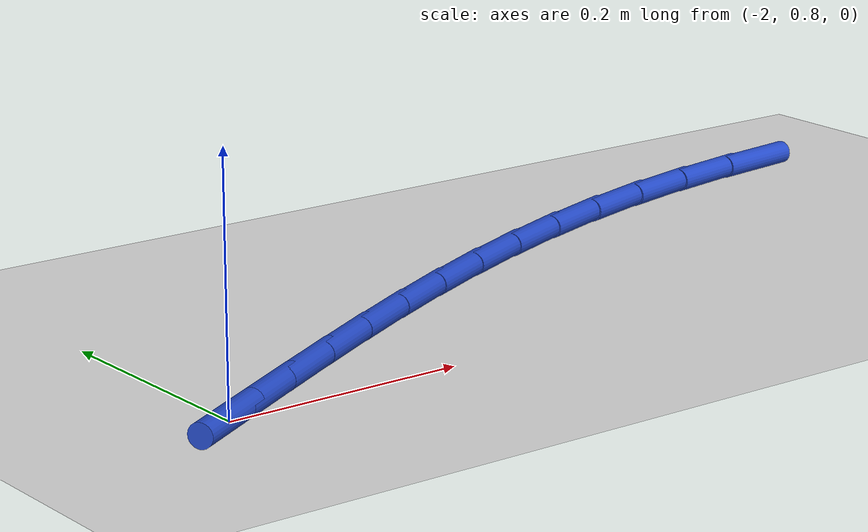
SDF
<sdf version="1.6">
 <world name="default">
  <model name="ground_plane">
   <static>1</static>
   <link name="link">
    <collision name="collision">
     <geometry><plane><normal>0 0 1</normal><size>100 100</size></plane></geometry>
     <surface><friction><ode><mu>100</mu><mu2>50</mu2></ode></friction></surface>
    </collision>
    <visual name="visual">
     <cast_shadows>0</cast_shadows>
     <geometry><plane><normal>0 0 1</normal><size>100 100</size></plane></geometry>
     <material>
      <script><uri>file://media/materials/scripts/gazebo.material</uri><name>Gazebo/WhiteGlow</name></script>
     </material>
    </visual>
   </link>
  </model>
  <model name="line">
   <link name="link_28">
    <pose>-1.2299708113165306 1.0844821349434282 0.01 0 1.57 0.11208522213411244</pose>
    <collision name="collision">
     <geometry><cylinder><radius>0.01</radius><length>0.08</length></cylinder></geometry>
    </collision>
    <visual name="visual">
     <material>
      <script><name>Gazebo/Blue</name><uri>file://media/materials/scripts/gazebo.material</uri></script>
     </material>
     <geometry><cylinder><radius>0.01</radius><length>0.08</length></cylinder></geometry>
    </visual>
   </link>
   <link name="link_29">
    <pose>-1.2955210549856158 1.0771039979952448 0.01 0 1.57 0.16536813270858763</pose>
    <collision name="collision">
     <geometry><cylinder><radius>0.01</radius><length>0.08</length></cylinder></geometry>
    </collision>
    <visual name="visual">
     <material>
      <script><name>Gazebo/Blue</name><uri>file://media/materials/scripts/gazebo.material</uri></script>
     </material>
     <geometry><cylinder><radius>0.01</radius><length>0.08</length></cylinder></geometry>
    </visual>
   </link>
   <link name="link_30">
    <pose>-1.3602763170983816 1.0662968481434256 0.01 0 1.57 0.2193134039087005</pose>
    <collision name="collision">
     <geometry><cylinder><radius>0.01</radius><length>0.08</length></cylinder></geometry>
    </collision>
    <visual name="visual">
     <material>
      <script><name>Gazebo/Blue</name><uri>file://media/materials/scripts/gazebo.material</uri></script>
     </material>
     <geometry><cylinder><radius>0.01</radius><length>0.08</length></cylinder></geometry>
    </visual>
   </link>
   <link name="link_31">
    <pose>-1.4239668499662483 1.0521003173871106 0.01 0 1.57 0.2727823605856406</pose>
    <collision name="collision">
     <geometry><cylinder><radius>0.01</radius><length>0.08</length></cylinder></geometry>
    </collision>
    <visual name="visual">
     <material>
      <script><name>Gazebo/Blue</name><uri>file://media/materials/scripts/gazebo.material</uri></script>
     </material>
     <geometry><cylinder><radius>0.01</radius><length>0.08</length></cylinder></geometry>
    </visual>
   </link>
   <link name="link_32">
    <pose>-1.4864231492459918 1.0346277974407114 0.01 0 1.57 0.3218545360599442</pose>
    <collision name="collision">
     <geometry><cylinder><radius>0.01</radius><length>0.08</length></cylinder></geometry>
    </collision>
    <visual name="visual">
     <material>
      <script><name>Gazebo/Blue</name><uri>file://media/materials/scripts/gazebo.material</uri></script>
     </material>
     <geometry><cylinder><radius>0.01</radius><length>0.08</length></cylinder></geometry>
    </visual>
   </link>
   <link name="link_33">
    <pose>-1.5477349654523078 1.0141834414545712 0.01 0 1.57 0.3655822721006313</pose>
    <collision name="collision">
     <geometry><cylinder><radius>0.01</radius><length>0.08</length></cylinder></geometry>
    </collision>
    <visual name="visual">
     <material>
      <script><name>Gazebo/Blue</name><uri>file://media/materials/scripts/gazebo.material</uri></script>
     </material>
     <geometry><cylinder><radius>0.01</radius><length>0.08</length></cylinder></geometry>
    </visual>
   </link>
   <link name="link_34">
    <pose>-1.608033404418992 0.9911018320958349 0.01 0 1.57 0.4037566906303103</pose>
    <collision name="collision">
     <geometry><cylinder><radius>0.01</radius><length>0.08</length></cylinder></geometry>
    </collision>
    <visual name="visual">
     <material>
      <script><name>Gazebo/Blue</name><uri>file://media/materials/scripts/gazebo.material</uri></script>
     </material>
     <geometry><cylinder><radius>0.01</radius><length>0.08</length></cylinder></geometry>
    </visual>
   </link>
   <link name="link_35">
    <pose>-1.6674495719798401 0.9657175520316479 0.01 0 1.57 0.4362823044641355</pose>
    <collision name="collision">
     <geometry><cylinder><radius>0.01</radius><length>0.08</length></cylinder></geometry>
    </collision>
    <visual name="visual">
     <material>
      <script><name>Gazebo/Blue</name><uri>file://media/materials/scripts/gazebo.material</uri></script>
     </material>
     <geometry><cylinder><radius>0.01</radius><length>0.08</length></cylinder></geometry>
    </visual>
   </link>
   <link name="link_36">
    <pose>-1.7261145739686468 0.9383651839291542 0.01 0 1.57 0.4631430774507923</pose>
    <collision name="collision">
     <geometry><cylinder><radius>0.01</radius><length>0.08</length></cylinder></geometry>
    </collision>
    <visual name="visual">
     <material>
      <script><name>Gazebo/Blue</name><uri>file://media/materials/scripts/gazebo.material</uri></script>
     </material>
     <geometry><cylinder><radius>0.01</radius><length>0.08</length></cylinder></geometry>
    </visual>
   </link>
   <link name="link_37">
    <pose>-1.784159516219208 0.9093793104554991 0.01 0 1.57 0.4843714016565237</pose>
    <collision name="collision">
     <geometry><cylinder><radius>0.01</radius><length>0.08</length></cylinder></geometry>
    </collision>
    <visual name="visual">
     <material>
      <script><name>Gazebo/Blue</name><uri>file://media/materials/scripts/gazebo.material</uri></script>
     </material>
     <geometry><cylinder><radius>0.01</radius><length>0.08</length></cylinder></geometry>
    </visual>
   </link>
   <link name="link_38">
    <pose>-1.8417155045653197 0.8790945142778278 0.01 0 1.57 0.5000222132225797</pose>
    <collision name="collision">
     <geometry><cylinder><radius>0.01</radius><length>0.08</length></cylinder></geometry>
    </collision>
    <visual name="visual">
     <material>
      <script><name>Gazebo/Blue</name><uri>file://media/materials/scripts/gazebo.material</uri></script>
     </material>
     <geometry><cylinder><radius>0.01</radius><length>0.08</length></cylinder></geometry>
    </visual>
   </link>
   <link name="link_39">
    <pose>-1.8989136448407768 0.8478453780632844 0.01 0 1.57 0.5101530089455806</pose>
    <collision name="collision">
     <geometry><cylinder><radius>0.01</radius><length>0.08</length></cylinder></geometry>
    </collision>
    <visual name="visual">
     <material>
      <script><name>Gazebo/Blue</name><uri>file://media/materials/scripts/gazebo.material</uri></script>
     </material>
     <geometry><cylinder><radius>0.01</radius><length>0.08</length></cylinder></geometry>
    </visual>
   </link>
   <link name="link_40">
    <pose>-1.9558850428793746 0.8159664844790141 0.01 0 1.57 0.5148096699705953</pose>
    <collision name="collision">
     <geometry><cylinder><radius>0.01</radius><length>0.08</length></cylinder></geometry>
    </collision>
    <visual name="visual">
     <material>
      <script><name>Gazebo/Blue</name><uri>file://media/materials/scripts/gazebo.material</uri></script>
     </material>
     <geometry><cylinder><radius>0.01</radius><length>0.08</length></cylinder></geometry>
    </visual>
   </link>
   <link name="link_41">
    <pose>-2.0127608045149086 0.783792416192162 0.01 0 1.57 0.515302457316423</pose>
    <collision name="collision">
     <geometry><cylinder><radius>0.01</radius><length>0.08</length></cylinder></geometry>
    </collision>
    <visual name="visual">
     <material>
      <script><name>Gazebo/Blue</name><uri>file://media/materials/scripts/gazebo.material</uri></script>
     </material>
     <geometry><cylinder><radius>0.01</radius><length>0.08</length></cylinder></geometry>
    </visual>
   </link>
  </model>
 </world>
</sdf>
